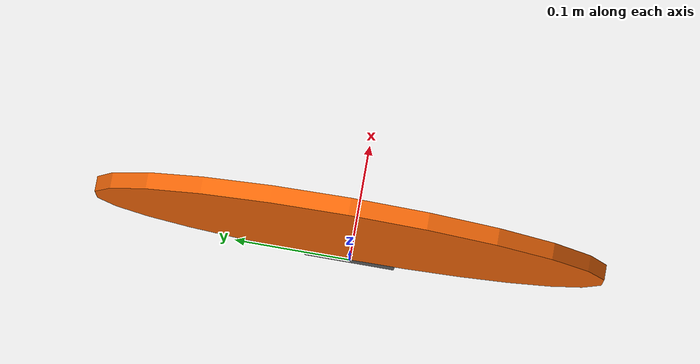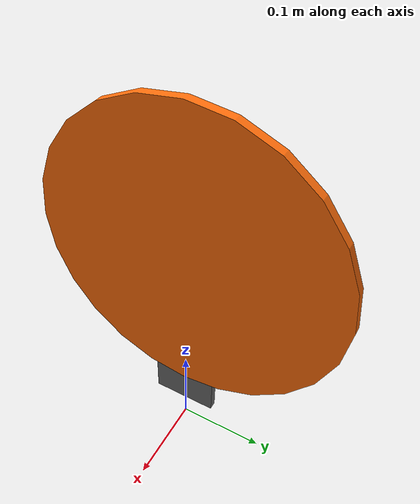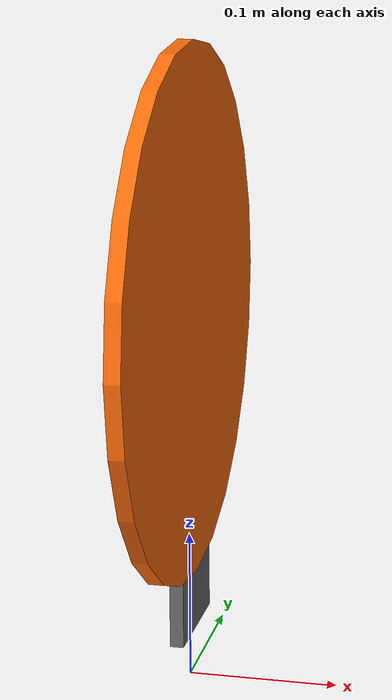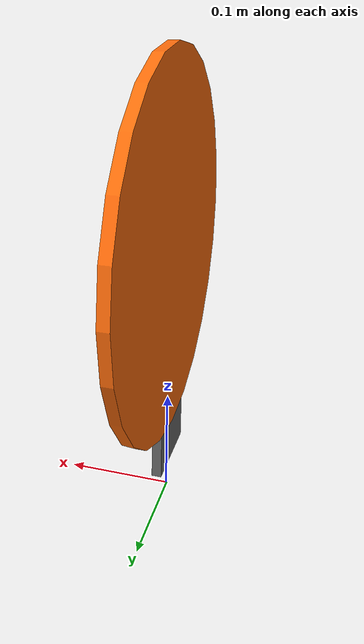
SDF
<?xml version="1.0"?>
<sdf version="1.7">
  <model name="paddle">
    <link name="base_link">
      <visual name="paddle_link">
        <pose>0 0 0.25 0 1.5708 0</pose>
        <geometry>
          <cylinder>
            <radius>0.175</radius>
            <length>0.01</length>
          </cylinder>
        </geometry>
        <material>
          <diffuse>1.0 0.423529411765 0.0392156862745 1.0</diffuse>
        </material>
      </visual>
      <visual name="handle_link">
        <pose>0 0 .06 0 0 0</pose>
        <geometry>
          <box>
            <size>.009 .075 .05</size>
          </box>
        </geometry>
        <material>
          <diffuse>0.4 0.4 0.4 1.0</diffuse>
        </material>
      </visual>
      <!--
      ******************TODO******************
      Figure out how to best do collision points
      -->
    </link>
  </model>
</sdf>
